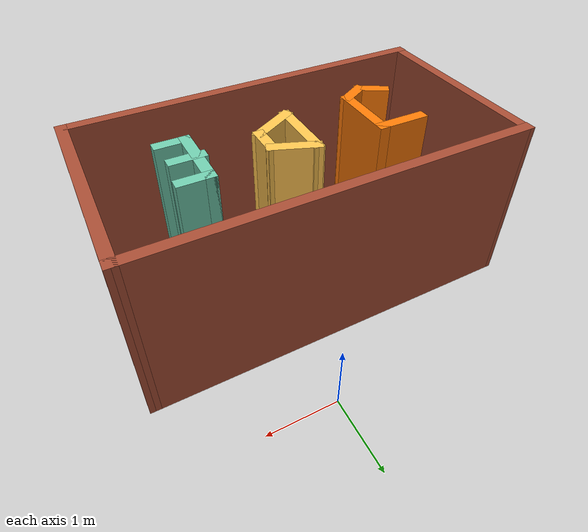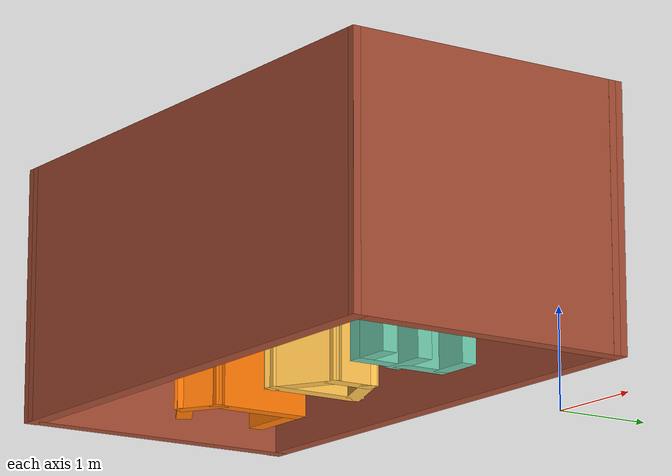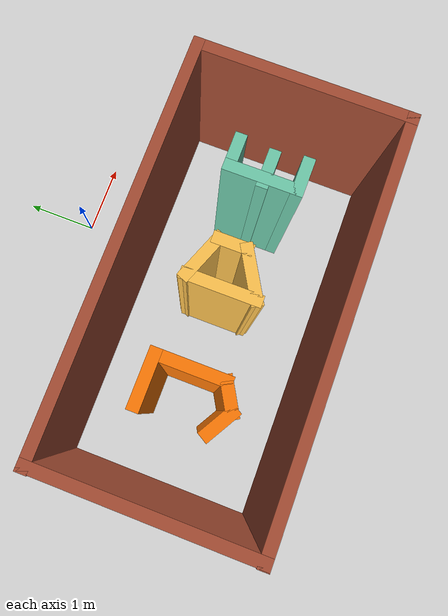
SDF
<?xml version='1.0'?>
<sdf version='1.7'>
  <model name='mymodel'>
    <pose>-0.614688 -1.92081 0 0 -0 0</pose>
    <link name='Wall_0'>
      <collision name='Wall_0_Collision'>
        <geometry>
          <box>
            <size>5.47352 0.15 2.5</size>
          </box>
        </geometry>
        <pose>0 0 1.25 0 -0 0</pose>
      </collision>
      <visual name='Wall_0_Visual'>
        <pose>0 0 1.25 0 -0 0</pose>
        <geometry>
          <box>
            <size>5.47352 0.15 2.5</size>
          </box>
        </geometry>
        <material>
          <script>
            <uri>file://media/materials/scripts/gazebo.material</uri>
            <name>Gazebo/Bricks</name>
          </script>
          <ambient>1 1 1 1</ambient>
        </material>
        <meta>
          <layer>0</layer>
        </meta>
      </visual>
      <pose>0.000775 0.918424 0 0 -0 0.004002</pose>
    </link>
    <link name='Wall_1'>
      <collision name='Wall_1_Collision'>
        <geometry>
          <box>
            <size>2.88567 0.15 2.5</size>
          </box>
        </geometry>
        <pose>0 0 1.25 0 -0 0</pose>
      </collision>
      <visual name='Wall_1_Visual'>
        <pose>0 0 1.25 0 -0 0</pose>
        <geometry>
          <box>
            <size>2.88567 0.15 2.5</size>
          </box>
        </geometry>
        <material>
          <script>
            <uri>file://media/materials/scripts/gazebo.material</uri>
            <name>Gazebo/Bricks</name>
          </script>
          <ambient>1 1 1 1</ambient>
        </material>
        <meta>
          <layer>0</layer>
        </meta>
      </visual>
      <pose>2.65751 -0.43875 0 0 -0 -1.57445</pose>
    </link>
    <link name='Wall_10'>
      <collision name='Wall_10_Collision'>
        <geometry>
          <box>
            <size>1 0.15 2.5</size>
          </box>
        </geometry>
        <pose>0 0 1.25 0 -0 0</pose>
      </collision>
      <visual name='Wall_10_Visual'>
        <pose>0 0 1.25 0 -0 0</pose>
        <geometry>
          <box>
            <size>1 0.15 2.5</size>
          </box>
        </geometry>
        <material>
          <script>
            <uri>file://media/materials/scripts/gazebo.material</uri>
            <name>Gazebo/Grey</name>
          </script>
          <ambient>1 0.764706 0.305882 1</ambient>
        </material>
        <meta>
          <layer>0</layer>
        </meta>
      </visual>
      <pose>-0.066617 -0.388532 0 0 -0 -1.5708</pose>
    </link>
    <link name='Wall_11'>
      <collision name='Wall_11_Collision'>
        <geometry>
          <box>
            <size>0.75 0.15 2.5</size>
          </box>
        </geometry>
        <pose>0 0 1.25 0 -0 0</pose>
      </collision>
      <visual name='Wall_11_Visual'>
        <pose>0 0 1.25 0 -0 0</pose>
        <geometry>
          <box>
            <size>0.75 0.15 2.5</size>
          </box>
        </geometry>
        <material>
          <script>
            <uri>file://media/materials/scripts/gazebo.material</uri>
            <name>Gazebo/Grey</name>
          </script>
          <ambient>1 0.764706 0.305882 1</ambient>
        </material>
        <meta>
          <layer>0</layer>
        </meta>
      </visual>
      <pose>0.193191 -0.663532 0 0 -0 0.523599</pose>
    </link>
    <link name='Wall_12'>
      <collision name='Wall_12_Collision'>
        <geometry>
          <box>
            <size>0.5 0.15 2.5</size>
          </box>
        </geometry>
        <pose>0 0 1.25 0 -0 0</pose>
      </collision>
      <visual name='Wall_12_Visual'>
        <pose>0 0 1.25 0 -0 0</pose>
        <geometry>
          <box>
            <size>0.5 0.15 2.5</size>
          </box>
        </geometry>
        <material>
          <script>
            <uri>file://media/materials/scripts/gazebo.material</uri>
            <name>Gazebo/Grey</name>
          </script>
          <ambient>1 0.764706 0.305882 1</ambient>
        </material>
        <meta>
          <layer>0</layer>
        </meta>
      </visual>
      <pose>0.452998 -0.338532 0 0 -0 1.5708</pose>
    </link>
    <link name='Wall_13'>
      <collision name='Wall_13_Collision'>
        <geometry>
          <box>
            <size>0.706776 0.15 2.5</size>
          </box>
        </geometry>
        <pose>0 0 1.25 0 -0 0</pose>
      </collision>
      <visual name='Wall_13_Visual'>
        <pose>0 0 1.25 0 -0 0</pose>
        <geometry>
          <box>
            <size>0.706776 0.15 2.5</size>
          </box>
        </geometry>
        <material>
          <script>
            <uri>file://media/materials/scripts/gazebo.material</uri>
            <name>Gazebo/Grey</name>
          </script>
          <ambient>1 0.764706 0.305882 1</ambient>
        </material>
        <meta>
          <layer>0</layer>
        </meta>
      </visual>
      <pose>0.193191 -0.063532 0 0 -0 2.77417</pose>
    </link>
    <link name='Wall_15'>
      <collision name='Wall_15_Collision'>
        <geometry>
          <box>
            <size>1 0.15 2.5</size>
          </box>
        </geometry>
        <pose>0 0 1.25 0 -0 0</pose>
      </collision>
      <visual name='Wall_15_Visual'>
        <pose>0 0 1.25 0 -0 0</pose>
        <geometry>
          <box>
            <size>1 0.15 2.5</size>
          </box>
        </geometry>
        <material>
          <script>
            <uri>file://media/materials/scripts/gazebo.material</uri>
            <name>Gazebo/Grey</name>
          </script>
          <ambient>0.435294 0.796078 0.67451 1</ambient>
        </material>
        <meta>
          <layer>0</layer>
        </meta>
      </visual>
      <pose>1.32469 -0.399402 0 0 -0 1.5708</pose>
    </link>
    <link name='Wall_16'>
      <collision name='Wall_16_Collision'>
        <geometry>
          <box>
            <size>0.5 0.15 2.5</size>
          </box>
        </geometry>
        <pose>0 0 1.25 0 -0 0</pose>
      </collision>
      <visual name='Wall_16_Visual'>
        <pose>0 0 1.25 0 -0 0</pose>
        <geometry>
          <box>
            <size>0.5 0.15 2.5</size>
          </box>
        </geometry>
        <material>
          <script>
            <uri>file://media/materials/scripts/gazebo.material</uri>
            <name>Gazebo/Grey</name>
          </script>
          <ambient>0.435294 0.796078 0.67451 1</ambient>
        </material>
        <meta>
          <layer>0</layer>
        </meta>
      </visual>
      <pose>1.49969 0.025598 0 0 -0 0</pose>
    </link>
    <link name='Wall_18'>
      <collision name='Wall_18_Collision'>
        <geometry>
          <box>
            <size>0.5 0.15 2.5</size>
          </box>
        </geometry>
        <pose>0 0 1.25 0 -0 0</pose>
      </collision>
      <visual name='Wall_18_Visual'>
        <pose>0 0 1.25 0 -0 0</pose>
        <geometry>
          <box>
            <size>0.5 0.15 2.5</size>
          </box>
        </geometry>
        <material>
          <script>
            <uri>file://media/materials/scripts/gazebo.material</uri>
            <name>Gazebo/Grey</name>
          </script>
          <ambient>0.435294 0.796078 0.67451 1</ambient>
        </material>
        <meta>
          <layer>0</layer>
        </meta>
      </visual>
      <pose>1.44751 -0.415706 0 0 -0 0</pose>
    </link>
    <link name='Wall_2'>
      <collision name='Wall_2_Collision'>
        <geometry>
          <box>
            <size>5.46492 0.15 2.5</size>
          </box>
        </geometry>
        <pose>0 0 1.25 0 -0 0</pose>
      </collision>
      <visual name='Wall_2_Visual'>
        <pose>0 0 1.25 0 -0 0</pose>
        <geometry>
          <box>
            <size>5.46492 0.15 2.5</size>
          </box>
        </geometry>
        <material>
          <script>
            <uri>file://media/materials/scripts/gazebo.material</uri>
            <name>Gazebo/Bricks</name>
          </script>
          <ambient>1 1 1 1</ambient>
        </material>
        <meta>
          <layer>0</layer>
        </meta>
      </visual>
      <pose>-0.004878 -1.82592 0 0 -0 -3.13431</pose>
    </link>
    <link name='Wall_20'>
      <collision name='Wall_20_Collision'>
        <geometry>
          <box>
            <size>0.5 0.15 2.5</size>
          </box>
        </geometry>
        <pose>0 0 1.25 0 -0 0</pose>
      </collision>
      <visual name='Wall_20_Visual'>
        <pose>0 0 1.25 0 -0 0</pose>
        <geometry>
          <box>
            <size>0.5 0.15 2.5</size>
          </box>
        </geometry>
        <material>
          <script>
            <uri>file://media/materials/scripts/gazebo.material</uri>
            <name>Gazebo/Grey</name>
          </script>
          <ambient>0.435294 0.796078 0.67451 1</ambient>
        </material>
        <meta>
          <layer>0</layer>
        </meta>
      </visual>
      <pose>1.49969 -0.824402 0 0 -0 0</pose>
    </link>
    <link name='Wall_3'>
      <collision name='Wall_3_Collision'>
        <geometry>
          <box>
            <size>2.90304 0.15 2.5</size>
          </box>
        </geometry>
        <pose>0 0 1.25 0 -0 0</pose>
      </collision>
      <visual name='Wall_3_Visual'>
        <pose>0 0 1.25 0 -0 0</pose>
        <geometry>
          <box>
            <size>2.90304 0.15 2.5</size>
          </box>
        </geometry>
        <material>
          <script>
            <uri>file://media/materials/scripts/gazebo.material</uri>
            <name>Gazebo/Bricks</name>
          </script>
          <ambient>1 1 1 1</ambient>
        </material>
        <meta>
          <layer>0</layer>
        </meta>
      </visual>
      <pose>-2.65162 -0.46875 0 0 -0 1.57032</pose>
    </link>
    <link name='Wall_5'>
      <collision name='Wall_5_Collision'>
        <geometry>
          <box>
            <size>0.75 0.15 2.5</size>
          </box>
        </geometry>
        <pose>0 0 1.25 0 -0 0</pose>
      </collision>
      <visual name='Wall_5_Visual'>
        <pose>0 0 1.25 0 -0 0</pose>
        <geometry>
          <box>
            <size>0.75 0.15 2.5</size>
          </box>
        </geometry>
        <material>
          <script>
            <uri>file://media/materials/scripts/gazebo.material</uri>
            <name>Gazebo/Grey</name>
          </script>
          <ambient>0.996078 0.47451 0.0196078 1</ambient>
        </material>
        <meta>
          <layer>0</layer>
        </meta>
      </visual>
      <pose>-1.33183 0.036468 0 0 -0 0</pose>
    </link>
    <link name='Wall_6'>
      <collision name='Wall_6_Collision'>
        <geometry>
          <box>
            <size>1 0.15 2.5</size>
          </box>
        </geometry>
        <pose>0 0 1.25 0 -0 0</pose>
      </collision>
      <visual name='Wall_6_Visual'>
        <pose>0 0 1.25 0 -0 0</pose>
        <geometry>
          <box>
            <size>1 0.15 2.5</size>
          </box>
        </geometry>
        <material>
          <script>
            <uri>file://media/materials/scripts/gazebo.material</uri>
            <name>Gazebo/Grey</name>
          </script>
          <ambient>0.996078 0.47451 0.0196078 1</ambient>
        </material>
        <meta>
          <layer>0</layer>
        </meta>
      </visual>
      <pose>-1.03183 -0.388532 0 0 -0 -1.5708</pose>
    </link>
    <link name='Wall_7'>
      <collision name='Wall_7_Collision'>
        <geometry>
          <box>
            <size>0.5 0.15 2.5</size>
          </box>
        </geometry>
        <pose>0 0 1.25 0 -0 0</pose>
      </collision>
      <visual name='Wall_7_Visual'>
        <pose>0 0 1.25 0 -0 0</pose>
        <geometry>
          <box>
            <size>0.5 0.15 2.5</size>
          </box>
        </geometry>
        <material>
          <script>
            <uri>file://media/materials/scripts/gazebo.material</uri>
            <name>Gazebo/Grey</name>
          </script>
          <ambient>0.996078 0.47451 0.0196078 1</ambient>
        </material>
        <meta>
          <layer>0</layer>
        </meta>
      </visual>
      <pose>-1.18339 -0.901032 0 0 -0 -2.61799</pose>
    </link>
    <link name='Wall_8'>
      <collision name='Wall_8_Collision'>
        <geometry>
          <box>
            <size>0.5 0.15 2.5</size>
          </box>
        </geometry>
        <pose>0 0 1.25 0 -0 0</pose>
      </collision>
      <visual name='Wall_8_Visual'>
        <pose>0 0 1.25 0 -0 0</pose>
        <geometry>
          <box>
            <size>0.5 0.15 2.5</size>
          </box>
        </geometry>
        <material>
          <script>
            <uri>file://media/materials/scripts/gazebo.material</uri>
            <name>Gazebo/Grey</name>
          </script>
          <ambient>0.996078 0.47451 0.0196078 1</ambient>
        </material>
        <meta>
          <layer>0</layer>
        </meta>
      </visual>
      <pose>-1.4865 -0.901032 0 0 -0 2.61799</pose>
    </link>
    <static>1</static>
  </model>
</sdf>
